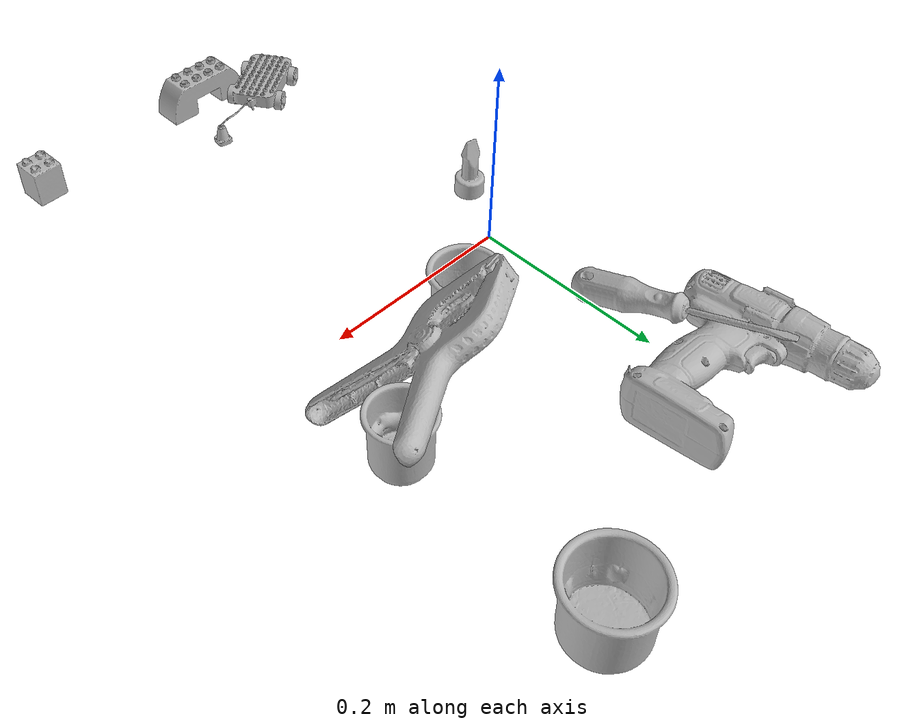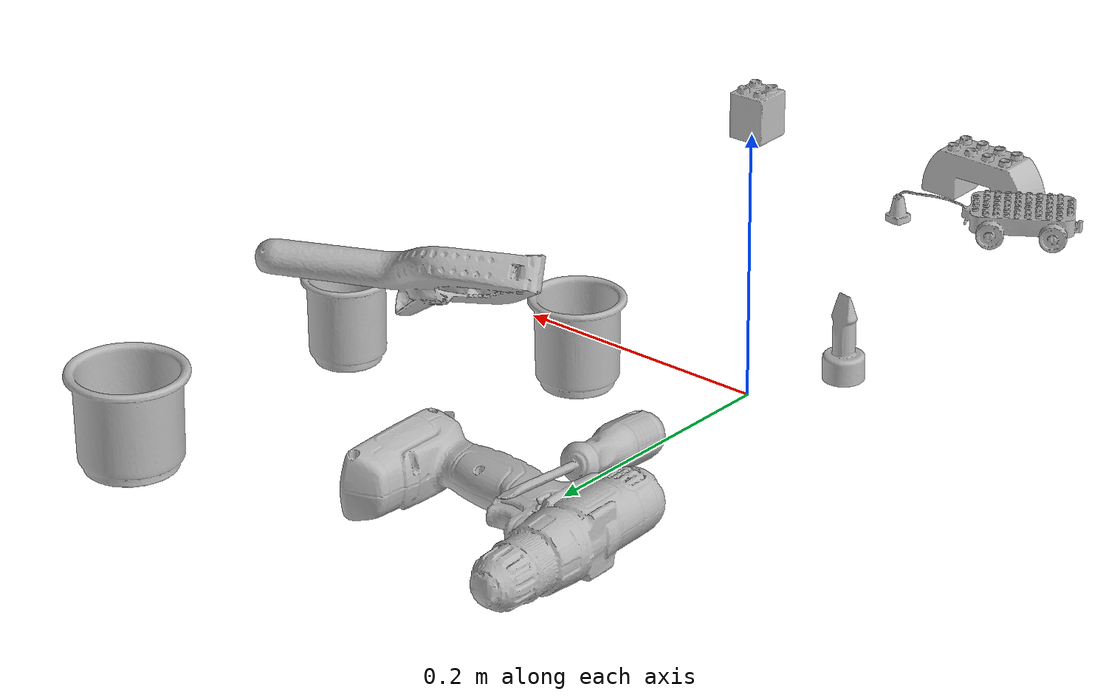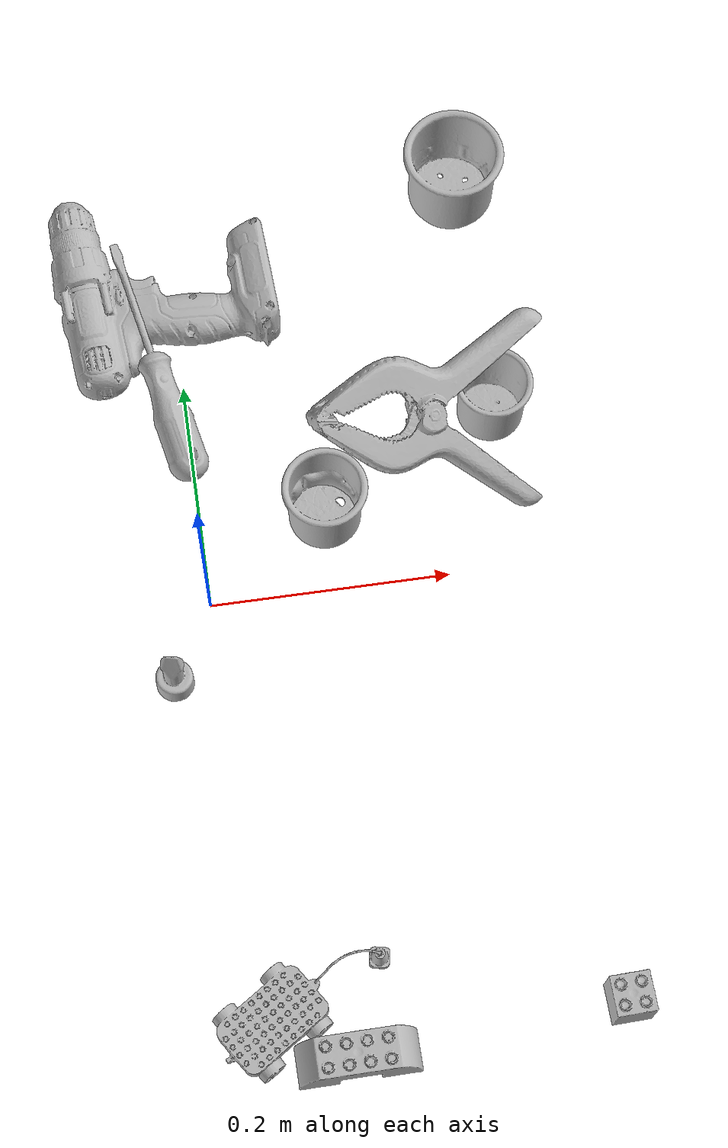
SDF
<sdf version="1.4">
  <world name="default">
    <light name="light1" type="point">
      <pose>0 0 1 0 0 0</pose>
      <diffuse>3 3 3 1</diffuse>
      <specular>3 3 3 1</specular>
    </light>
    <light name="light2" type="point">
      <pose>0 0.5 2 0 0 0</pose>
      <diffuse>1 1 1 1</diffuse>
      <specular>1 1 1 1</specular>
    </light>
    <light name="light3" type="point">
      <pose>0 0.5 2 0 0 0</pose>
      <diffuse>3 3 3 1</diffuse>
      <specular>3 3 3 1</specular>
    </light>
    <scene>
      <ambient>0.7 0.7 0.7</ambient>
    </scene>
    <model name="cup1">
      <link name="link_cup1">
        <collision name="default">
          <geometry>
            <mesh>
              <uri>model://d_cups/collision_meshes/collision.obj</uri>
              <scale>1.0 1.0 1.0</scale>
            </mesh>
          </geometry>
          <surface>
            <friction>
              <ode>
                <mu>0.5</mu>
                <mu2>0.5</mu2>
              </ode>
            </friction>
          <contact>
        <ode>
            <max_vel>0</max_vel>
            <min_depth>0.0001</min_depth>
            <kp>1e8</kp>
        </ode>
    </contact></surface>
        </collision>
        <visual name="default">
          <geometry>
            <mesh>
              <uri>model://d_cups/visual_meshes/visual.dae</uri>
              <scale>1.0 1.0 1.0</scale>
            </mesh>
          </geometry>
        </visual>
        <inertial>
          <mass>0.04943045228719711</mass>
          <pose>0.0008068052702583373 0.0019117395859211683 -0.0022666507866233587 0.2401104468273406 -0.24710716259907536 0.594298245500967</pose>
          <inertia>
            <ixx>4.1384912e-05</ixx>
            <iyy>4.1265153e-05</iyy>
            <izz>3.7460377e-05</izz>
            <ixy>0</ixy>
            <ixz>0</ixz>
            <iyz>0</iyz>
          </inertia>
        </inertial>
      </link>
      <pose>0.1038970872759819 0.0637991651892662 0.03465899080038071 1.176945306250239e-05 -2.6256285319084403e-05 0.05415417030541309</pose>
    </model>
    <model name="cup2">
      <link name="link_cup2">
        <collision name="default">
          <geometry>
            <mesh>
              <uri>model://c_cups/collision_meshes/collision.obj</uri>
              <scale>1.0 1.0 1.0</scale>
            </mesh>
          </geometry>
          <surface>
            <friction>
              <ode>
                <mu>0.5</mu>
                <mu2>0.5</mu2>
              </ode>
            </friction>
          <contact>
        <ode>
            <max_vel>0</max_vel>
            <min_depth>0.0001</min_depth>
            <kp>1e8</kp>
        </ode>
    </contact></surface>
        </collision>
        <visual name="default">
          <geometry>
            <mesh>
              <uri>model://c_cups/visual_meshes/visual.dae</uri>
              <scale>1.0 1.0 1.0</scale>
            </mesh>
          </geometry>
        </visual>
        <inertial>
          <mass>0.02161477506160736</mass>
          <pose>0.0007237254758365452 0.002015391131862998 -0.0012750980677083135 0.3021577101392444 0.013461522825774588 -0.08771822086046323</pose>
          <inertia>
            <ixx>1.607462e-05</ixx>
            <iyy>1.5790554e-05</iyy>
            <izz>1.4215883e-05</izz>
            <ixy>0</ixy>
            <ixz>0</ixz>
            <iyz>0</iyz>
          </inertia>
        </inertial>
      </link>
      <pose>0.25581610202789307 0.1397767961025238 0.03346099704504013 -0.00013353584266768834 -0.00025622960726161606 -2.801401968990558</pose>
    </model>
    <model name="cup3">
      <link name="link_cup3">
        <collision name="default">
          <geometry>
            <mesh>
              <uri>model://g_cups/collision_meshes/collision.obj</uri>
              <scale>1.0 1.0 1.0</scale>
            </mesh>
          </geometry>
          <surface>
            <friction>
              <ode>
                <mu>0.5</mu>
                <mu2>0.5</mu2>
              </ode>
            </friction>
          <contact>
        <ode>
            <max_vel>0</max_vel>
            <min_depth>0.0001</min_depth>
            <kp>1e8</kp>
        </ode>
    </contact></surface>
        </collision>
        <visual name="default">
          <geometry>
            <mesh>
              <uri>model://g_cups/visual_meshes/visual.dae</uri>
              <scale>1.0 1.0 1.0</scale>
            </mesh>
          </geometry>
        </visual>
        <inertial>
          <mass>0.04413851350545883</mass>
          <pose>-0.0007946275873109698 -4.206433004583232e-05 -0.002132937777787447 -0.2138199678327952 -0.31410615416341514 0.3111935262320568</pose>
          <inertia>
            <ixx>5.151955e-05</ixx>
            <iyy>5.1344283e-05</iyy>
            <izz>5.3365377e-05</izz>
            <ixy>0</ixy>
            <ixz>0</ixz>
            <iyz>0</iyz>
          </inertia>
        </inertial>
      </link>
      <pose>0.2559282183647156 0.35597121715545654 0.03720293194055557 2.6006631247608194e-06 9.013348287429758e-05 2.705799207063962</pose>
    </model>
    <model name="toy1">
      <link name="link_toy1">
        <collision name="default">
          <geometry>
            <mesh>
              <uri>model://e_lego_duplo/collision_meshes/collision.obj</uri>
              <scale>1.0 1.0 1.0</scale>
            </mesh>
          </geometry>
          <surface>
            <friction>
              <ode>
                <mu>0.5</mu>
                <mu2>0.5</mu2>
              </ode>
            </friction>
          <contact>
        <ode>
            <max_vel>0</max_vel>
            <min_depth>0.0001</min_depth>
            <kp>1e8</kp>
        </ode>
    </contact></surface>
        </collision>
        <visual name="default">
          <geometry>
            <mesh>
              <uri>model://e_lego_duplo/visual_meshes/visual.dae</uri>
              <scale>1.0 1.0 1.0</scale>
            </mesh>
          </geometry>
        </visual>
        <inertial>
          <mass>0.08806774020195007</mass>
          <pose>0.0003256051568314433 0.00023485405836254358 0.0019521453650668263 -0.02256777049150226 -6.824370740412915e-05 -0.00762515400873393</pose>
          <inertia>
            <ixx>1.8365032e-05</ixx>
            <iyy>7.537481e-05</iyy>
            <izz>7.3399904e-05</izz>
            <ixy>0</ixy>
            <ixz>0</ixz>
            <iyz>0</iyz>
          </inertia>
        </inertial>
      </link>
      <pose>0.06853995472192764 -0.383158415555954 0.021809015423059464 1.2052069307216354e-05 -4.193443860530814e-06 0.015299066049513808</pose>
    </model>
    <model name="toy2">
      <link name="link_toy2">
        <collision name="default">
          <geometry>
            <mesh>
              <uri>model://b_lego_duplo/collision_meshes/collision.obj</uri>
              <scale>1.0 1.0 1.0</scale>
            </mesh>
          </geometry>
          <surface>
            <friction>
              <ode>
                <mu>0.5</mu>
                <mu2>0.5</mu2>
              </ode>
            </friction>
          <contact>
        <ode>
            <max_vel>0</max_vel>
            <min_depth>0.0001</min_depth>
            <kp>1e8</kp>
        </ode>
    </contact></surface>
        </collision>
        <visual name="default">
          <geometry>
            <mesh>
              <uri>model://b_lego_duplo/visual_meshes/visual.dae</uri>
              <scale>1.0 1.0 1.0</scale>
            </mesh>
          </geometry>
        </visual>
        <inertial>
          <mass>0.04734363779425621</mass>
          <pose>-0.00011053025809815153 -9.15254986466607e-06 0.0019294298253953457 -0.03749543151759021 -0.02635344242756168 0.4519151706388912</pose>
          <inertia>
            <ixx>9.689229e-06</ixx>
            <iyy>9.754364e-06</iyy>
            <izz>8.632791e-06</izz>
            <ixy>0</ixy>
            <ixz>0</ixz>
            <iyz>0</iyz>
          </inertia>
        </inertial>
      </link>
      <pose>0.2806406319141388 -0.36770254373550415 0.0218149833381176 3.2984989066361085e-06 1.095829007562238e-06 1.6044514445935358</pose>
    </model>
    <model name="toy3">
      <link name="link_toy3">
        <collision name="default">
          <geometry>
            <mesh>
              <uri>model://g_lego_duplo/collision_meshes/collision.obj</uri>
              <scale>0.5 0.5 0.5</scale>
            </mesh>
          </geometry>
          <surface>
            <friction>
              <ode>
                <mu>0.5</mu>
                <mu2>0.5</mu2>
              </ode>
            </friction>
          <contact>
        <ode>
            <max_vel>0</max_vel>
            <min_depth>0.0001</min_depth>
            <kp>1e8</kp>
        </ode>
    </contact></surface>
        </collision>
        <visual name="default">
          <geometry>
            <mesh>
              <uri>model://g_lego_duplo/visual_meshes/visual.dae</uri>
              <scale>0.5 0.5 0.5</scale>
            </mesh>
          </geometry>
        </visual>
        <inertial>
          <mass>0.0549229197204113</mass>
          <pose>-0.02502383477985859 0.0008777315961197019 0.0019403378246352077 0.010963030367844774 0.03810824354215502 -0.09653013034360637</pose>
          <inertia>
            <ixx>1.989599e-05</ixx>
            <iyy>6.0152015e-05</iyy>
            <izz>7.525238e-05</izz>
            <ixy>0</ixy>
            <ixz>0</ixz>
            <iyz>0</iyz>
          </inertia>
        </inertial>
      </link>
      <pose>0.033432960510253906 -0.33283674716949463 0.014964895322918892 -8.103003155209857e-05 -0.003657399892890883 0.5766152458689452</pose>
    </model>
    <model name="toy4">
      <link name="link_toy4">
        <collision name="default">
          <geometry>
            <mesh>
              <uri>model://e_toy_airplane/collision_meshes/collision.obj</uri>
              <scale>1.0 1.0 1.0</scale>
            </mesh>
          </geometry>
          <surface>
            <friction>
              <ode>
                <mu>0.5</mu>
                <mu2>0.5</mu2>
              </ode>
            </friction>
          <contact>
        <ode>
            <max_vel>0</max_vel>
            <min_depth>0.0001</min_depth>
            <kp>1e8</kp>
        </ode>
    </contact></surface>
        </collision>
        <visual name="default">
          <geometry>
            <mesh>
              <uri>model://e_toy_airplane/visual_meshes/visual.dae</uri>
              <scale>1.0 1.0 1.0</scale>
            </mesh>
          </geometry>
        </visual>
        <inertial>
          <mass>0.02949252724647522</mass>
          <pose>0.0001174047210952267 -2.248294731543865e-05 -0.011187205091118813 0.00551852159670192 0.009228270522190251 0.15041692690710914</pose>
          <inertia>
            <ixx>9.0014555e-06</ixx>
            <iyy>8.909378e-06</iyy>
            <izz>2.7052915e-06</izz>
            <ixy>0</ixy>
            <ixz>0</ixz>
            <iyz>0</iyz>
          </inertia>
        </inertial>
      </link>
      <pose>-0.03645055741071701 -0.06378829479217529 0.03321199119091034 6.49435760717278e-05 -0.00010127006845440799 1.2523528082609208</pose>
    </model>
    <model name="hardware1">
      <link name="link_hardware1">
        <collision name="default">
          <geometry>
            <mesh>
              <uri>model://power_drill/collision_meshes/collision.obj</uri>
              <scale>1.0 1.0 1.0</scale>
            </mesh>
          </geometry>
          <surface>
            <friction>
              <ode>
                <mu>0.5</mu>
                <mu2>0.5</mu2>
              </ode>
            </friction>
          <contact>
        <ode>
            <max_vel>0</max_vel>
            <min_depth>0.0001</min_depth>
            <kp>1e8</kp>
        </ode>
    </contact></surface>
        </collision>
        <visual name="default">
          <geometry>
            <mesh>
              <uri>model://power_drill/visual_meshes/visual.dae</uri>
              <scale>1.0 1.0 1.0</scale>
            </mesh>
          </geometry>
        </visual>
        <inertial>
          <mass>0.4622694253921509</mass>
          <pose>-0.014780544675886631 0.014369423501193523 0.0012414170196279883 0.0046091653592492164 0.00407302392026691 -0.1836269379856391</pose>
          <inertia>
            <ixx>0.0018837696</ixx>
            <iyy>0.00074116525</iyy>
            <izz>0.0024878501</izz>
            <ixy>0</ixy>
            <ixz>0</ixz>
            <iyz>0</iyz>
          </inertia>
        </inertial>
      </link>
      <pose>-0.006190887652337551 0.2892305254936218 0.027312500402331352 -0.030305967006273922 -0.047254827733157714 1.6501818710787042</pose>
    </model>
    <model name="hardware2">
      <link name="link_hardware2">
        <collision name="default">
          <geometry>
            <mesh>
              <uri>model://flat_screwdriver/collision_meshes/collision.obj</uri>
              <scale>1.0 1.0 1.0</scale>
            </mesh>
          </geometry>
          <surface>
            <friction>
              <ode>
                <mu>0.5</mu>
                <mu2>0.5</mu2>
              </ode>
            </friction>
          <contact>
        <ode>
            <max_vel>0</max_vel>
            <min_depth>0.0001</min_depth>
            <kp>1e8</kp>
        </ode>
    </contact></surface>
        </collision>
        <visual name="default">
          <geometry>
            <mesh>
              <uri>model://flat_screwdriver/visual_meshes/visual.dae</uri>
              <scale>1.0 1.0 1.0</scale>
            </mesh>
          </geometry>
        </visual>
        <inertial>
          <mass>0.07028686255216599</mass>
          <pose>-0.0489187091588974 -0.0006576801533810794 -0.0006140916375443339 -0.5613212056153659 -0.0032337294395619258 0.006982277044942129</pose>
          <inertia>
            <ixx>8.3043415e-06</ixx>
            <iyy>0.00010542549</iyy>
            <izz>0.00010537667</izz>
            <ixy>0</ixy>
            <ixz>0</ixz>
            <iyz>0</iyz>
          </inertia>
        </inertial>
      </link>
      <pose>-0.02206227369606495 0.20902788639068604 0.037248462438583374 0.08992837096576088 -0.2129169613483623 1.7742590481723144</pose>
    </model>
    <model name="hardware3">
      <link name="link_hardware3">
        <collision name="default">
          <geometry>
            <mesh>
              <uri>model://extra_large_clamp/collision_meshes/collision.obj</uri>
              <scale>1.0 1.0 1.0</scale>
            </mesh>
          </geometry>
          <surface>
            <friction>
              <ode>
                <mu>0.5</mu>
                <mu2>0.5</mu2>
              </ode>
            </friction>
          <contact>
        <ode>
            <max_vel>0</max_vel>
            <min_depth>0.0001</min_depth>
            <kp>1e8</kp>
        </ode>
    </contact></surface>
        </collision>
        <visual name="default">
          <geometry>
            <mesh>
              <uri>model://extra_large_clamp/visual_meshes/visual.dae</uri>
              <scale>1.0 1.0 1.0</scale>
            </mesh>
          </geometry>
        </visual>
        <inertial>
          <mass>0.19051048159599304</mass>
          <pose>0.0032320222817361355 -7.615413051098585e-05 0.0003172157157678157 0.013786989477745152 -0.0005066809054022428 -0.0008935736893705532</pose>
          <inertia>
            <ixx>0.00028954487</ixx>
            <iyy>0.0004985067</iyy>
            <izz>0.0007616155</izz>
            <ixy>0</ixy>
            <ixz>0</ixz>
            <iyz>0</iyz>
          </inertia>
        </inertial>
      </link>
      <pose>0.19542407989501953 0.1140814945101738 0.07392027974128723 -0.5718168256494743 -0.28661566385353104 -3.0830682247434087</pose>
    </model>
  <physics type="ode">
      <max_contacts>50</max_contacts>
      <ode>
        <solver>
          <type>quick</type>
          <iters>75</iters>
        </solver>
        <constraints>
          <contact_max_correcting_vel>0</contact_max_correcting_vel>
          <contact_surface_layer>0</contact_surface_layer>
        </constraints>
      </ode>
    </physics></world>
</sdf>
